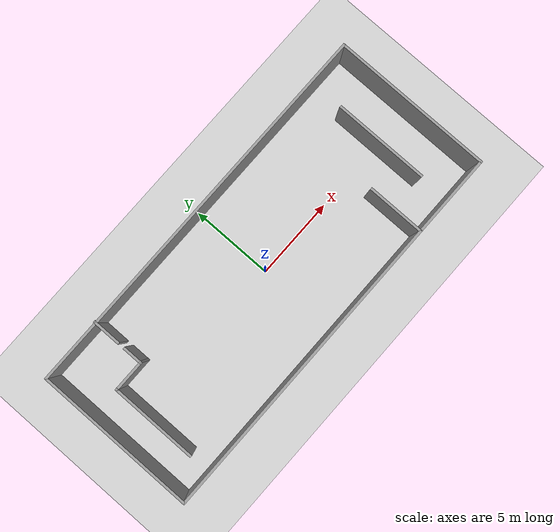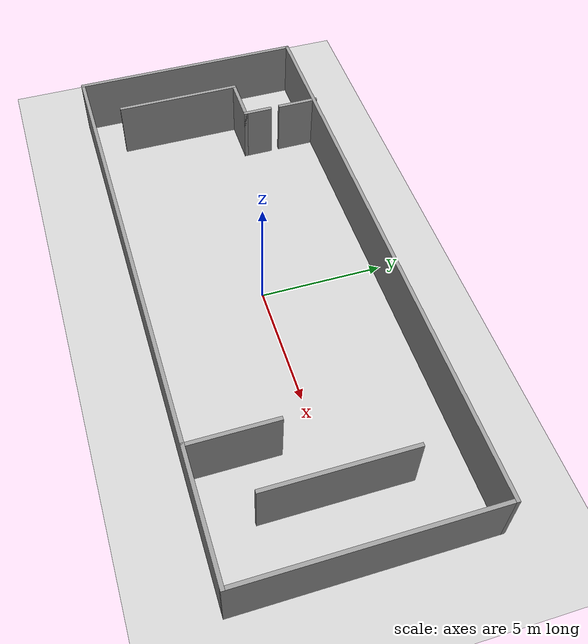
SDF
<?xml version="1.0" ?>

<sdf version="1.6">

  <world name="simple_world">

    <gravity>0 0 -9.81</gravity>
    <physics name="default_physics" default="0" type="ode">
      <max_step_size>0.001</max_step_size>
      <real_time_factor>1</real_time_factor>
      <real_time_update_rate>1000</real_time_update_rate>
    </physics>

    <scene>
      <ambient>0.4 0.4 0.4 1</ambient>
      <background>0.7 0.7 0.7 1</background>
      <shadows>1</shadows>
    </scene>

    <gui>
      <camera name='gzclient_camera'>
        <pose>1.5 -15.5 20 0 0.9 1.6</pose>
      </camera>
    </gui>

    <!-- Light Source -->
    <include>
      <uri>model://sun</uri>
    </include>

    <!-- A ground plane -->
    <include>
      <uri>model://ground_plane</uri>
      <pose>0 0 0 0 0 0</pose>
    </include>

    <include>
      <uri>model://playground</uri>
      <pose> 0 0 0 0 0 0</pose>
    </include>

  </world>
</sdf>

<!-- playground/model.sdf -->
<sdf version='1.7'>
  <model name='playground'>
    <pose>0.571182 -0.212849 0 0 -0 0</pose>
    <link name='Wall_0'>
      <collision name='Wall_0_Collision'>
        <geometry>
          <box>
            <size>9.75 0.15 2.5</size>
          </box>
        </geometry>
        <pose>0 0 1.25 0 -0 0</pose>
      </collision>
      <visual name='Wall_0_Visual'>
        <pose>0 0 1.25 0 -0 0</pose>
        <geometry>
          <box>
            <size>9.75 0.15 2.5</size>
          </box>
        </geometry>
        <material>
          <script>
            <uri>file://media/materials/scripts/gazebo.material</uri>
            <name>Gazebo/Grey</name>
          </script>
          <ambient>1 1 1 1</ambient>
        </material>
        <meta>
          <layer>0</layer>
        </meta>
      </visual>
      <pose>-11.8 -0.026772 0 0 -0 -1.5708</pose>
    </link>
    <link name='Wall_1'>
      <collision name='Wall_1_Collision'>
        <geometry>
          <box>
            <size>23.75 0.15 2.5</size>
          </box>
        </geometry>
        <pose>0 0 1.25 0 -0 0</pose>
      </collision>
      <visual name='Wall_1_Visual'>
        <pose>0 0 1.25 0 -0 0</pose>
        <geometry>
          <box>
            <size>23.75 0.15 2.5</size>
          </box>
        </geometry>
        <material>
          <script>
            <uri>file://media/materials/scripts/gazebo.material</uri>
            <name>Gazebo/Grey</name>
          </script>
          <ambient>1 1 1 1</ambient>
        </material>
        <meta>
          <layer>0</layer>
        </meta>
      </visual>
      <pose>-0 -4.82677 0 0 -0 0</pose>
    </link>
    <link name='Wall_11'>
      <collision name='Wall_11_Collision'>
        <geometry>
          <box>
            <size>1.25 0.15 2.5</size>
          </box>
        </geometry>
        <pose>0 0 1.25 0 -0 0</pose>
      </collision>
      <visual name='Wall_11_Visual'>
        <pose>0 0 1.25 0 -0 0</pose>
        <geometry>
          <box>
            <size>1.25 0.15 2.5</size>
          </box>
        </geometry>
        <material>
          <script>
            <uri>file://media/materials/scripts/gazebo.material</uri>
            <name>Gazebo/Grey</name>
          </script>
          <ambient>1 1 1 1</ambient>
        </material>
        <meta>
          <layer>0</layer>
        </meta>
      </visual>
      <pose>-7.95691 2.1898 0 0 -0 -1.5708</pose>
    </link>
    <link name='Wall_13'>
      <collision name='Wall_13_Collision'>
        <geometry>
          <box>
            <size>2 0.15 2.5</size>
          </box>
        </geometry>
        <pose>0 0 1.25 0 -0 0</pose>
      </collision>
      <visual name='Wall_13_Visual'>
        <pose>0 0 1.25 0 -0 0</pose>
        <geometry>
          <box>
            <size>2 0.15 2.5</size>
          </box>
        </geometry>
        <material>
          <script>
            <uri>file://media/materials/scripts/gazebo.material</uri>
            <name>Gazebo/Grey</name>
          </script>
          <ambient>1 1 1 1</ambient>
        </material>
        <meta>
          <layer>0</layer>
        </meta>
      </visual>
      <pose>-8.88191 1.63979 0 0 -0 3.14159</pose>
    </link>
    <link name='Wall_14'>
      <collision name='Wall_14_Collision'>
        <geometry>
          <box>
            <size>5.25 0.15 2.5</size>
          </box>
        </geometry>
        <pose>0 0 1.25 0 -0 0</pose>
      </collision>
      <visual name='Wall_14_Visual'>
        <pose>0 0 1.25 0 -0 0</pose>
        <geometry>
          <box>
            <size>5.25 0.15 2.5</size>
          </box>
        </geometry>
        <material>
          <script>
            <uri>file://media/materials/scripts/gazebo.material</uri>
            <name>Gazebo/Grey</name>
          </script>
          <ambient>1 1 1 1</ambient>
        </material>
        <meta>
          <layer>0</layer>
        </meta>
      </visual>
      <pose>-9.80691 -0.910205 0 0 -0 -1.5708</pose>
    </link>
    <link name='Wall_16'>
      <collision name='Wall_16_Collision'>
        <geometry>
          <box>
            <size>3.5 0.15 2.5</size>
          </box>
        </geometry>
        <pose>0 0 1.25 0 -0 0</pose>
      </collision>
      <visual name='Wall_16_Visual'>
        <pose>0 0 1.25 0 -0 0</pose>
        <geometry>
          <box>
            <size>3.5 0.15 2.5</size>
          </box>
        </geometry>
        <material>
          <script>
            <uri>file://media/materials/scripts/gazebo.material</uri>
            <name>Gazebo/Grey</name>
          </script>
          <ambient>1 1 1 1</ambient>
        </material>
        <meta>
          <layer>0</layer>
        </meta>
      </visual>
      <pose>6.88302 -3.12599 0 0 -0 1.5708</pose>
    </link>
    <link name='Wall_18'>
      <collision name='Wall_18_Collision'>
        <geometry>
          <box>
            <size>5.75 0.15 2.5</size>
          </box>
        </geometry>
        <pose>0 0 1.25 0 -0 0</pose>
      </collision>
      <visual name='Wall_18_Visual'>
        <pose>0 0 1.25 0 -0 0</pose>
        <geometry>
          <box>
            <size>5.75 0.15 2.5</size>
          </box>
        </geometry>
        <material>
          <script>
            <uri>file://media/materials/scripts/gazebo.material</uri>
            <name>Gazebo/Grey</name>
          </script>
          <ambient>1 1 1 1</ambient>
        </material>
        <meta>
          <layer>0</layer>
        </meta>
      </visual>
      <pose>9.14853 -0.140031 0 0 -0 1.5708</pose>
    </link>
    <link name='Wall_2'>
      <collision name='Wall_2_Collision'>
        <geometry>
          <box>
            <size>9.75 0.15 2.5</size>
          </box>
        </geometry>
        <pose>0 0 1.25 0 -0 0</pose>
      </collision>
      <visual name='Wall_2_Visual'>
        <pose>0 0 1.25 0 -0 0</pose>
        <geometry>
          <box>
            <size>9.75 0.15 2.5</size>
          </box>
        </geometry>
        <material>
          <script>
            <uri>file://media/materials/scripts/gazebo.material</uri>
            <name>Gazebo/Grey</name>
          </script>
          <ambient>1 1 1 1</ambient>
        </material>
        <meta>
          <layer>0</layer>
        </meta>
      </visual>
      <pose>11.8 -0.026772 0 0 -0 1.5708</pose>
    </link>
    <link name='Wall_3'>
      <collision name='Wall_3_Collision'>
        <geometry>
          <box>
            <size>23.75 0.15 2.5</size>
          </box>
        </geometry>
        <pose>0 0 1.25 0 -0 0</pose>
      </collision>
      <visual name='Wall_3_Visual'>
        <pose>0 0 1.25 0 -0 0</pose>
        <geometry>
          <box>
            <size>23.75 0.15 2.5</size>
          </box>
        </geometry>
        <material>
          <script>
            <uri>file://media/materials/scripts/gazebo.material</uri>
            <name>Gazebo/Grey</name>
          </script>
          <ambient>1 1 1 1</ambient>
        </material>
        <meta>
          <layer>0</layer>
        </meta>
      </visual>
      <pose>-0 4.77323 0 0 -0 3.14159</pose>
    </link>
    <link name='Wall_7'>
      <collision name='Wall_7_Collision'>
        <geometry>
          <box>
            <size>1.75 0.15 2.5</size>
          </box>
        </geometry>
        <pose>0 0 1.25 0 -0 0</pose>
      </collision>
      <visual name='Wall_7_Visual'>
        <pose>0 0 1.25 0 -0 0</pose>
        <geometry>
          <box>
            <size>1.75 0.15 2.5</size>
          </box>
        </geometry>
        <material>
          <script>
            <uri>file://media/materials/scripts/gazebo.material</uri>
            <name>Gazebo/Grey</name>
          </script>
          <ambient>1 1 1 1</ambient>
        </material>
        <meta>
          <layer>0</layer>
        </meta>
      </visual>
      <pose>-7.96178 4.02677 0 0 -0 -1.5708</pose>
    </link>
    <static>1</static>
  </model>
</sdf>
